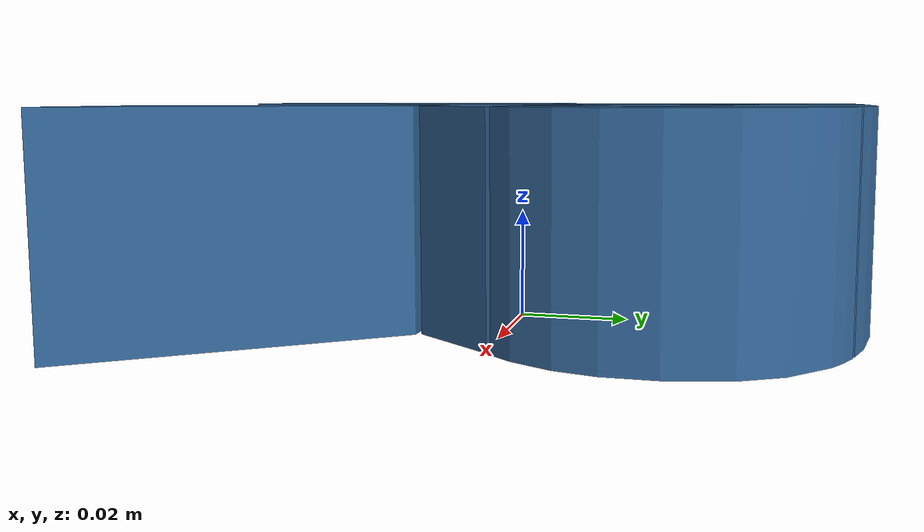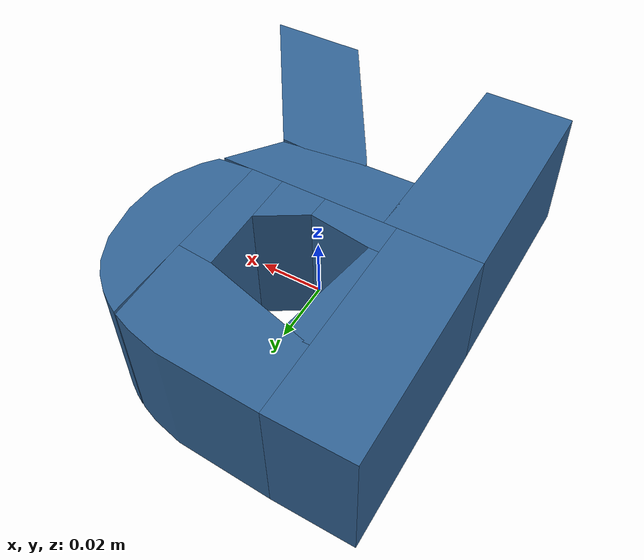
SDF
<?xml version='1.0' encoding='UTF-8'?>
<!-- This SDF was autogenerated by obj_to_drake_sdf.py -->
<sdf version="1.7">
  <model name="smaller_r">
    <link name="smaller_r">
      <inertial>
        <pose>0 0 0 0 0 0</pose>
        <mass>0.1</mass>
        <inertia>
          <ixx>0.00015099748</ixx>
          <iyy>9.0538155e-05</iyy>
          <izz>0.00021486897</izz>
          <ixy>6.9726066e-06</ixy>
          <ixz>8.158305e-21</ixz>
          <iyz>1.0197881e-20</iyz>
        </inertia>
      </inertial>
      <visual name="convex_0">
        <pose>0 0 0 0 0 0</pose>
        <geometry>
          <mesh>
            <uri>smaller_r_convex_0.obj</uri>
          </mesh>
        </geometry>
        <material>
          <diffuse>0.19607843137254902 0.39215686274509803 0.5882352941176471 1</diffuse>
        </material>
      </visual>
      <collision name="convex_0_volume">
        <pose>0 0 0 0 0 0</pose>
        <geometry>
          <mesh>
            <uri>smaller_r_convex_0.obj</uri>
          </mesh>
        </geometry>
        <drake:proximity_properties xmlns:drake="uri:drake">
          <drake:compliant_hydroelastic/>
          <drake:hydroelastic_modulus> 3.0e7 </drake:hydroelastic_modulus>
          <drake:mesh_resolution_hint> 0.02 </drake:mesh_resolution_hint>
          <drake:hunt_crossley_dissipation>10</drake:hunt_crossley_dissipation>
          <drake:mu_dynamic>0.3</drake:mu_dynamic>
        </drake:proximity_properties>
      </collision>
      <visual name="convex_1">
        <pose>0 0 0 0 0 0</pose>
        <geometry>
          <mesh>
            <uri>smaller_r_convex_1.obj</uri>
          </mesh>
        </geometry>
        <material>
          <diffuse>0.19607843137254902 0.39215686274509803 0.5882352941176471 1</diffuse>
        </material>
      </visual>
      <collision name="convex_1_volume">
        <pose>0 0 0 0 0 0</pose>
        <geometry>
          <mesh>
            <uri>smaller_r_convex_1.obj</uri>
          </mesh>
        </geometry>
        <drake:proximity_properties xmlns:drake="uri:drake">
          <drake:compliant_hydroelastic/>
          <drake:hydroelastic_modulus> 3.0e7 </drake:hydroelastic_modulus>
          <drake:mesh_resolution_hint> 0.02 </drake:mesh_resolution_hint>
          <drake:hunt_crossley_dissipation>10</drake:hunt_crossley_dissipation>
          <drake:mu_dynamic>0.3</drake:mu_dynamic>
        </drake:proximity_properties>
      </collision>
      <visual name="convex_2">
        <pose>0 0 0 0 0 0</pose>
        <geometry>
          <mesh>
            <uri>smaller_r_convex_2.obj</uri>
          </mesh>
        </geometry>
        <material>
          <diffuse>0.19607843137254902 0.39215686274509803 0.5882352941176471 1</diffuse>
        </material>
      </visual>
      <collision name="convex_2_volume">
        <pose>0 0 0 0 0 0</pose>
        <geometry>
          <mesh>
            <uri>smaller_r_convex_2.obj</uri>
          </mesh>
        </geometry>
        <drake:proximity_properties xmlns:drake="uri:drake">
          <drake:compliant_hydroelastic/>
          <drake:hydroelastic_modulus> 3.0e7 </drake:hydroelastic_modulus>
          <drake:mesh_resolution_hint> 0.02 </drake:mesh_resolution_hint>
          <drake:hunt_crossley_dissipation>10</drake:hunt_crossley_dissipation>
          <drake:mu_dynamic>0.3</drake:mu_dynamic>
        </drake:proximity_properties>
      </collision>
      <visual name="convex_3">
        <pose>0 0 0 0 0 0</pose>
        <geometry>
          <mesh>
            <uri>smaller_r_convex_3.obj</uri>
          </mesh>
        </geometry>
        <material>
          <diffuse>0.19607843137254902 0.39215686274509803 0.5882352941176471 1</diffuse>
        </material>
      </visual>
      <collision name="convex_3_volume">
        <pose>0 0 0 0 0 0</pose>
        <geometry>
          <mesh>
            <uri>smaller_r_convex_3.obj</uri>
          </mesh>
        </geometry>
        <drake:proximity_properties xmlns:drake="uri:drake">
          <drake:compliant_hydroelastic/>
          <drake:hydroelastic_modulus> 3.0e7 </drake:hydroelastic_modulus>
          <drake:mesh_resolution_hint> 0.02 </drake:mesh_resolution_hint>
          <drake:hunt_crossley_dissipation>10</drake:hunt_crossley_dissipation>
          <drake:mu_dynamic>0.3</drake:mu_dynamic>
        </drake:proximity_properties>
      </collision>
      <visual name="convex_4">
        <pose>0 0 0 0 0 0</pose>
        <geometry>
          <mesh>
            <uri>smaller_r_convex_4.obj</uri>
          </mesh>
        </geometry>
        <material>
          <diffuse>0.19607843137254902 0.39215686274509803 0.5882352941176471 1</diffuse>
        </material>
      </visual>
      <collision name="convex_4_volume">
        <pose>0 0 0 0 0 0</pose>
        <geometry>
          <mesh>
            <uri>smaller_r_convex_4.obj</uri>
          </mesh>
        </geometry>
        <drake:proximity_properties xmlns:drake="uri:drake">
          <drake:compliant_hydroelastic/>
          <drake:hydroelastic_modulus> 3.0e7 </drake:hydroelastic_modulus>
          <drake:mesh_resolution_hint> 0.02 </drake:mesh_resolution_hint>
          <drake:hunt_crossley_dissipation>10</drake:hunt_crossley_dissipation>
          <drake:mu_dynamic>0.3</drake:mu_dynamic>
        </drake:proximity_properties>
      </collision>
      <visual name="convex_5">
        <pose>0 0 0 0 0 0</pose>
        <geometry>
          <mesh>
            <uri>smaller_r_convex_5.obj</uri>
          </mesh>
        </geometry>
        <material>
          <diffuse>0.19607843137254902 0.39215686274509803 0.5882352941176471 1</diffuse>
        </material>
      </visual>
      <collision name="convex_5_volume">
        <pose>0 0 0 0 0 0</pose>
        <geometry>
          <mesh>
            <uri>smaller_r_convex_5.obj</uri>
          </mesh>
        </geometry>
        <drake:proximity_properties xmlns:drake="uri:drake">
          <drake:compliant_hydroelastic/>
          <drake:hydroelastic_modulus> 3.0e7 </drake:hydroelastic_modulus>
          <drake:mesh_resolution_hint> 0.02 </drake:mesh_resolution_hint>
          <drake:hunt_crossley_dissipation>10</drake:hunt_crossley_dissipation>
          <drake:mu_dynamic>0.3</drake:mu_dynamic>
        </drake:proximity_properties>
      </collision>
      <visual name="convex_6">
        <pose>0 0 0 0 0 0</pose>
        <geometry>
          <mesh>
            <uri>smaller_r_convex_6.obj</uri>
          </mesh>
        </geometry>
        <material>
          <diffuse>0.19607843137254902 0.39215686274509803 0.5882352941176471 1</diffuse>
        </material>
      </visual>
      <collision name="convex_6_volume">
        <pose>0 0 0 0 0 0</pose>
        <geometry>
          <mesh>
            <uri>smaller_r_convex_6.obj</uri>
          </mesh>
        </geometry>
        <drake:proximity_properties xmlns:drake="uri:drake">
          <drake:compliant_hydroelastic/>
          <drake:hydroelastic_modulus> 3.0e7 </drake:hydroelastic_modulus>
          <drake:mesh_resolution_hint> 0.02 </drake:mesh_resolution_hint>
          <drake:hunt_crossley_dissipation>10</drake:hunt_crossley_dissipation>
          <drake:mu_dynamic>0.3</drake:mu_dynamic>
        </drake:proximity_properties>
      </collision>
      <visual name="convex_7">
        <pose>0 0 0 0 0 0</pose>
        <geometry>
          <mesh>
            <uri>smaller_r_convex_7.obj</uri>
          </mesh>
        </geometry>
        <material>
          <diffuse>0.19607843137254902 0.39215686274509803 0.5882352941176471 1</diffuse>
        </material>
      </visual>
      <collision name="convex_7_volume">
        <pose>0 0 0 0 0 0</pose>
        <geometry>
          <mesh>
            <uri>smaller_r_convex_7.obj</uri>
          </mesh>
        </geometry>
        <drake:proximity_properties xmlns:drake="uri:drake">
          <drake:compliant_hydroelastic/>
          <drake:hydroelastic_modulus> 3.0e7 </drake:hydroelastic_modulus>
          <drake:mesh_resolution_hint> 0.02 </drake:mesh_resolution_hint>
          <drake:hunt_crossley_dissipation>10</drake:hunt_crossley_dissipation>
          <drake:mu_dynamic>0.3</drake:mu_dynamic>
        </drake:proximity_properties>
      </collision>
      <visual name="convex_8">
        <pose>0 0 0 0 0 0</pose>
        <geometry>
          <mesh>
            <uri>smaller_r_convex_8.obj</uri>
          </mesh>
        </geometry>
        <material>
          <diffuse>0.19607843137254902 0.39215686274509803 0.5882352941176471 1</diffuse>
        </material>
      </visual>
      <collision name="convex_8_volume">
        <pose>0 0 0 0 0 0</pose>
        <geometry>
          <mesh>
            <uri>smaller_r_convex_8.obj</uri>
          </mesh>
        </geometry>
        <drake:proximity_properties xmlns:drake="uri:drake">
          <drake:compliant_hydroelastic/>
          <drake:hydroelastic_modulus> 3.0e7 </drake:hydroelastic_modulus>
          <drake:mesh_resolution_hint> 0.02 </drake:mesh_resolution_hint>
          <drake:hunt_crossley_dissipation>10</drake:hunt_crossley_dissipation>
          <drake:mu_dynamic>0.3</drake:mu_dynamic>
        </drake:proximity_properties>
      </collision>
      <visual name="convex_9">
        <pose>0 0 0 0 0 0</pose>
        <geometry>
          <mesh>
            <uri>smaller_r_convex_9.obj</uri>
          </mesh>
        </geometry>
        <material>
          <diffuse>0.19607843137254902 0.39215686274509803 0.5882352941176471 1</diffuse>
        </material>
      </visual>
      <collision name="convex_9_volume">
        <pose>0 0 0 0 0 0</pose>
        <geometry>
          <mesh>
            <uri>smaller_r_convex_9.obj</uri>
          </mesh>
        </geometry>
        <drake:proximity_properties xmlns:drake="uri:drake">
          <drake:compliant_hydroelastic/>
          <drake:hydroelastic_modulus> 3.0e7 </drake:hydroelastic_modulus>
          <drake:mesh_resolution_hint> 0.02 </drake:mesh_resolution_hint>
          <drake:hunt_crossley_dissipation>10</drake:hunt_crossley_dissipation>
          <drake:mu_dynamic>0.3</drake:mu_dynamic>
        </drake:proximity_properties>
      </collision>
    </link>
  </model>
</sdf>
